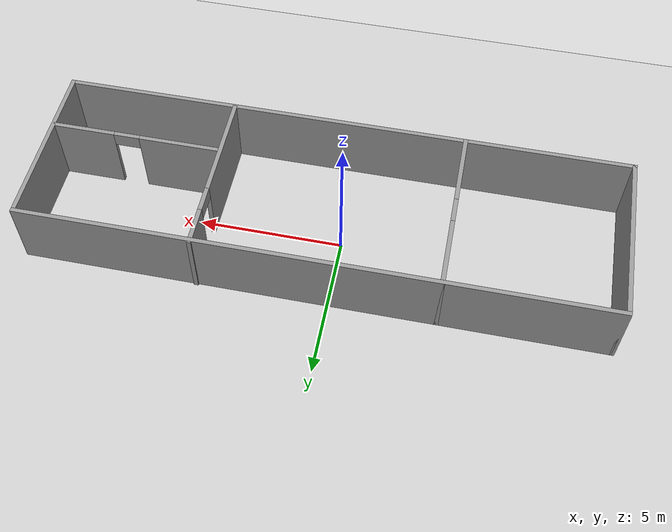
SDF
<sdf version="1.7">
 <world name="default">
  <light name="sun" type="directional">
   <pose>0 0 10 0 -0 0</pose>
   <diffuse>0.8 0.8 0.8 1</diffuse>
   <specular>0.2 0.2 0.2 1</specular>
   <attenuation>
    <range>1000</range>
    <constant>0.9</constant>
    <linear>0.01</linear>
    <quadratic>0.001</quadratic>
   </attenuation>
   <direction>-0.5 0.1 -0.9</direction>
   <spot><inner_angle>0</inner_angle><outer_angle>0</outer_angle><falloff>0</falloff></spot>
  </light>
  <model name="ground_plane">
   <static>1</static>
   <link name="link">
    <collision name="collision">
     <geometry><plane><normal>0 0 1</normal><size>100 100</size></plane></geometry>
     <surface>
      <contact><collide_bitmask>65535</collide_bitmask></contact>
      <friction><ode><mu>100</mu><mu2>50</mu2></ode></friction>
     </surface>
    </collision>
    <visual name="visual">
     <cast_shadows>0</cast_shadows>
     <geometry><plane><normal>0 0 1</normal><size>100 100</size></plane></geometry>
     <material>
      <script><uri>file://media/materials/scripts/gazebo.material</uri><name>Gazebo/Grey</name></script>
     </material>
    </visual>
   </link>
  </model>
  <gravity>0 0 -9.8</gravity>
  <magnetic_field>6e-06 2.3e-05 -4.2e-05</magnetic_field>
  <atmosphere type="adiabatic"/>
  <physics type="ode">
   <max_step_size>0.001</max_step_size>
   <real_time_factor>1</real_time_factor>
   <real_time_update_rate>1000</real_time_update_rate>
  </physics>
  <scene><ambient>0.4 0.4 0.4 1</ambient><background>0.7 0.7 0.7 1</background><shadows>1</shadows></scene>
  <audio><device>default</device></audio>
  <spherical_coordinates>
   <surface_model>EARTH_WGS84</surface_model>
   <latitude_deg>0</latitude_deg>
   <longitude_deg>0</longitude_deg>
   <elevation>0</elevation>
   <heading_deg>0</heading_deg>
  </spherical_coordinates>
  <model name="my_world2">
   <pose>0.547016 1.03416 0 0 -0 0</pose>
   <link name="Wall_10">
    <collision name="Wall_10_Collision">
     <geometry><box><size>6 0.15 2.5</size></box></geometry>
     <pose>0 0 1.25 0 -0 0</pose>
    </collision>
    <visual name="Wall_10_Visual">
     <pose>0 0 1.25 0 -0 0</pose>
     <geometry><box><size>6 0.15 2.5</size></box></geometry>
     <material>
      <script><uri>file://media/materials/scripts/gazebo.material</uri><name>Gazebo/Grey</name></script>
      <ambient>1 1 1 1</ambient>
     </material>
     <meta><layer>0</layer></meta>
    </visual>
    <pose>9.925 -1.5334 0 0 -0 -1.5708</pose>
   </link>
   <link name="Wall_11">
    <collision name="Wall_11_Collision">
     <geometry><box><size>20 0.15 2.5</size></box></geometry>
     <pose>0 0 1.25 0 -0 0</pose>
    </collision>
    <visual name="Wall_11_Visual">
     <pose>0 0 1.25 0 -0 0</pose>
     <geometry><box><size>20 0.15 2.5</size></box></geometry>
     <material>
      <script><uri>file://media/materials/scripts/gazebo.material</uri><name>Gazebo/Grey</name></script>
      <ambient>1 1 1 1</ambient>
     </material>
     <meta><layer>0</layer></meta>
    </visual>
    <pose>-0 -4.4584 0 0 -0 3.14159</pose>
   </link>
   <link name="Wall_12">
    <collision name="Wall_12_Collision">
     <geometry><box><size>6 0.15 2.5</size></box></geometry>
     <pose>0 0 1.25 0 -0 0</pose>
    </collision>
    <visual name="Wall_12_Visual">
     <pose>0 0 1.25 0 -0 0</pose>
     <geometry><box><size>6 0.15 2.5</size></box></geometry>
     <material>
      <script><uri>file://media/materials/scripts/gazebo.material</uri><name>Gazebo/Grey</name></script>
      <ambient>1 1 1 1</ambient>
     </material>
     <meta><layer>0</layer></meta>
    </visual>
    <pose>-9.925 -1.5334 0 0 -0 1.5708</pose>
   </link>
   <link name="Wall_14">
    <pose>-4.20575 -1.5334 0 0 -0 -1.5708</pose>
    <visual name="Wall_14_Visual_0">
     <pose>-1.76053 0 1.25 0 -0 0</pose>
     <geometry><box><size>2.47894 0.15 2.5</size></box></geometry>
     <material>
      <script><uri>file://media/materials/scripts/gazebo.material</uri><name>Gazebo/Grey</name></script>
      <ambient>1 1 1 1</ambient>
     </material>
     <meta><layer>0</layer></meta>
    </visual>
    <collision name="Wall_14_Collision_0">
     <geometry><box><size>2.47894 0.15 2.5</size></box></geometry>
     <pose>-1.76053 0 1.25 0 -0 0</pose>
    </collision>
    <visual name="Wall_14_Visual_1">
     <pose>1.68947 0 1.25 0 -0 0</pose>
     <geometry><box><size>2.62106 0.15 2.5</size></box></geometry>
     <material>
      <script><uri>file://media/materials/scripts/gazebo.material</uri><name>Gazebo/Grey</name></script>
      <ambient>1 1 1 1</ambient>
     </material>
     <meta><layer>0</layer></meta>
    </visual>
    <collision name="Wall_14_Collision_1">
     <geometry><box><size>2.62106 0.15 2.5</size></box></geometry>
     <pose>1.68947 0 1.25 0 -0 0</pose>
    </collision>
    <visual name="Wall_14_Visual_2">
     <pose>-0.071055 0 2.25 0 -0 0</pose>
     <geometry><box><size>0.9 0.15 0.5</size></box></geometry>
     <material>
      <script><uri>file://media/materials/scripts/gazebo.material</uri><name>Gazebo/Grey</name></script>
      <ambient>1 1 1 1</ambient>
     </material>
     <meta><layer>0</layer></meta>
    </visual>
    <collision name="Wall_14_Collision_2">
     <geometry><box><size>0.9 0.15 0.5</size></box></geometry>
     <pose>-0.071055 0 2.25 0 -0 0</pose>
    </collision>
   </link>
   <link name="Wall_16">
    <pose>3.94462 -1.48093 0 0 -0 -1.5708</pose>
    <visual name="Wall_16_Visual_0">
     <pose>-2.32764 0 1.25 0 -0 0</pose>
     <geometry><box><size>1.34471 0.15 2.5</size></box></geometry>
     <material>
      <script><uri>file://media/materials/scripts/gazebo.material</uri><name>Gazebo/Grey</name></script>
      <ambient>1 1 1 1</ambient>
     </material>
     <meta><layer>0</layer></meta>
    </visual>
    <collision name="Wall_16_Collision_0">
     <geometry><box><size>1.34471 0.15 2.5</size></box></geometry>
     <pose>-2.32764 0 1.25 0 -0 0</pose>
    </collision>
    <visual name="Wall_16_Visual_1">
     <pose>1.12236 0 1.25 0 -0 0</pose>
     <geometry><box><size>3.75529 0.15 2.5</size></box></geometry>
     <material>
      <script><uri>file://media/materials/scripts/gazebo.material</uri><name>Gazebo/Grey</name></script>
      <ambient>1 1 1 1</ambient>
     </material>
     <meta><layer>0</layer></meta>
    </visual>
    <collision name="Wall_16_Collision_1">
     <geometry><box><size>3.75529 0.15 2.5</size></box></geometry>
     <pose>1.12236 0 1.25 0 -0 0</pose>
    </collision>
    <visual name="Wall_16_Visual_2">
     <pose>-1.20529 0 2.25 0 -0 0</pose>
     <geometry><box><size>0.9 0.15 0.5</size></box></geometry>
     <material>
      <script><uri>file://media/materials/scripts/gazebo.material</uri><name>Gazebo/Grey</name></script>
      <ambient>1 1 1 1</ambient>
     </material>
     <meta><layer>0</layer></meta>
    </visual>
    <collision name="Wall_16_Collision_2">
     <geometry><box><size>0.9 0.15 0.5</size></box></geometry>
     <pose>-1.20529 0 2.25 0 -0 0</pose>
    </collision>
   </link>
   <link name="Wall_20">
    <pose>6.92727 -2.40768 0 0 -0 0</pose>
    <visual name="Wall_20_Visual_0">
     <pose>-1.5583 0 1.25 0 -0 0</pose>
     <geometry><box><size>2.8834 0.15 2.5</size></box></geometry>
     <material>
      <script><uri>file://media/materials/scripts/gazebo.material</uri><name>Gazebo/Grey</name></script>
      <ambient>1 1 1 1</ambient>
     </material>
     <meta><layer>0</layer></meta>
    </visual>
    <collision name="Wall_20_Collision_0">
     <geometry><box><size>2.8834 0.15 2.5</size></box></geometry>
     <pose>-1.5583 0 1.25 0 -0 0</pose>
    </collision>
    <visual name="Wall_20_Visual_1">
     <pose>1.8917 0 1.25 0 -0 0</pose>
     <geometry><box><size>2.2166 0.15 2.5</size></box></geometry>
     <material>
      <script><uri>file://media/materials/scripts/gazebo.material</uri><name>Gazebo/Grey</name></script>
      <ambient>1 1 1 1</ambient>
     </material>
     <meta><layer>0</layer></meta>
    </visual>
    <collision name="Wall_20_Collision_1">
     <geometry><box><size>2.2166 0.15 2.5</size></box></geometry>
     <pose>1.8917 0 1.25 0 -0 0</pose>
    </collision>
    <visual name="Wall_20_Visual_2">
     <pose>0.333398 0 2.25 0 -0 0</pose>
     <geometry><box><size>0.9 0.15 0.5</size></box></geometry>
     <material>
      <script><uri>file://media/materials/scripts/gazebo.material</uri><name>Gazebo/Grey</name></script>
      <ambient>1 1 1 1</ambient>
     </material>
     <meta><layer>0</layer></meta>
    </visual>
    <collision name="Wall_20_Collision_2">
     <geometry><box><size>0.9 0.15 0.5</size></box></geometry>
     <pose>0.333398 0 2.25 0 -0 0</pose>
    </collision>
   </link>
   <link name="Wall_9">
    <collision name="Wall_9_Collision">
     <geometry><box><size>20 0.15 2.5</size></box></geometry>
     <pose>0 0 1.25 0 -0 0</pose>
    </collision>
    <visual name="Wall_9_Visual">
     <pose>0 0 1.25 0 -0 0</pose>
     <geometry><box><size>20 0.15 2.5</size></box></geometry>
     <material>
      <script><uri>file://media/materials/scripts/gazebo.material</uri><name>Gazebo/Grey</name></script>
      <ambient>1 1 1 1</ambient>
     </material>
     <meta><layer>0</layer></meta>
    </visual>
    <pose>-0 1.3916 0 0 -0 0</pose>
   </link>
   <static>1</static>
  </model>
 </world>
</sdf>
